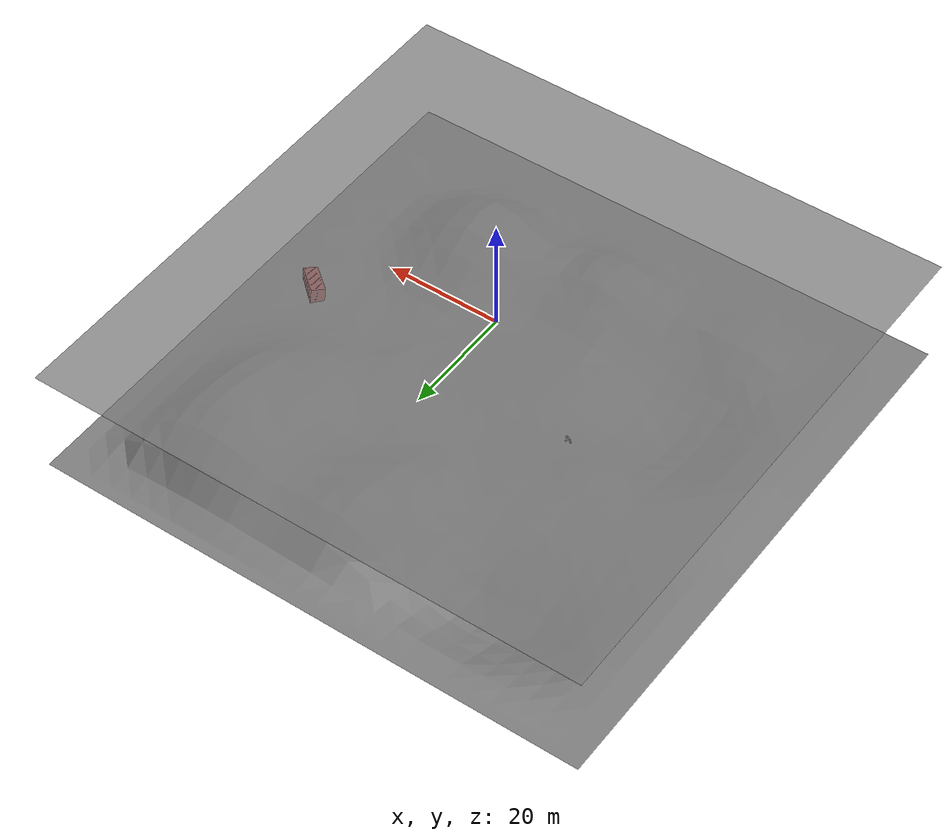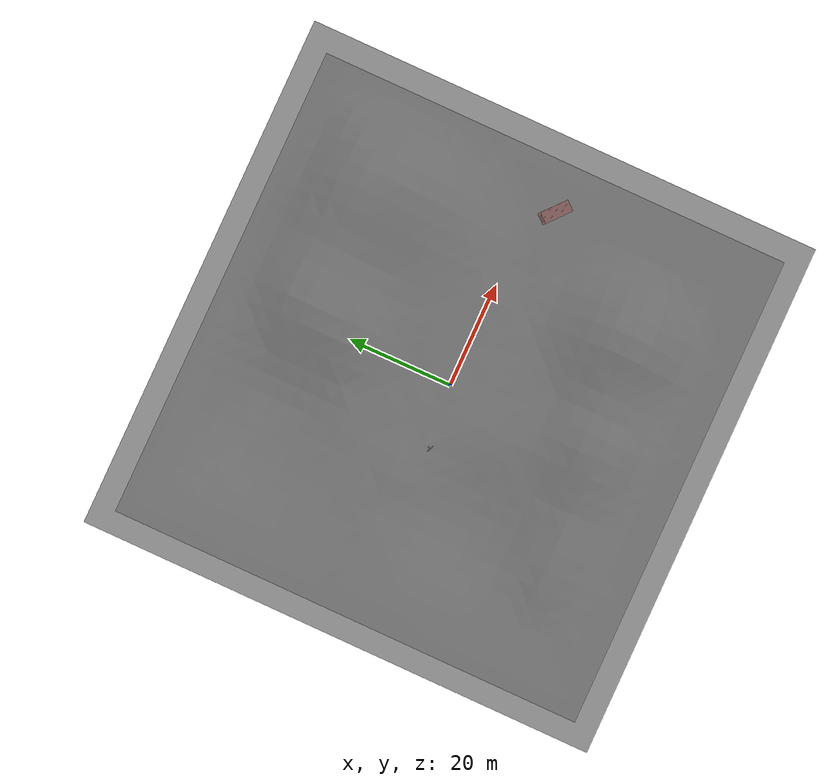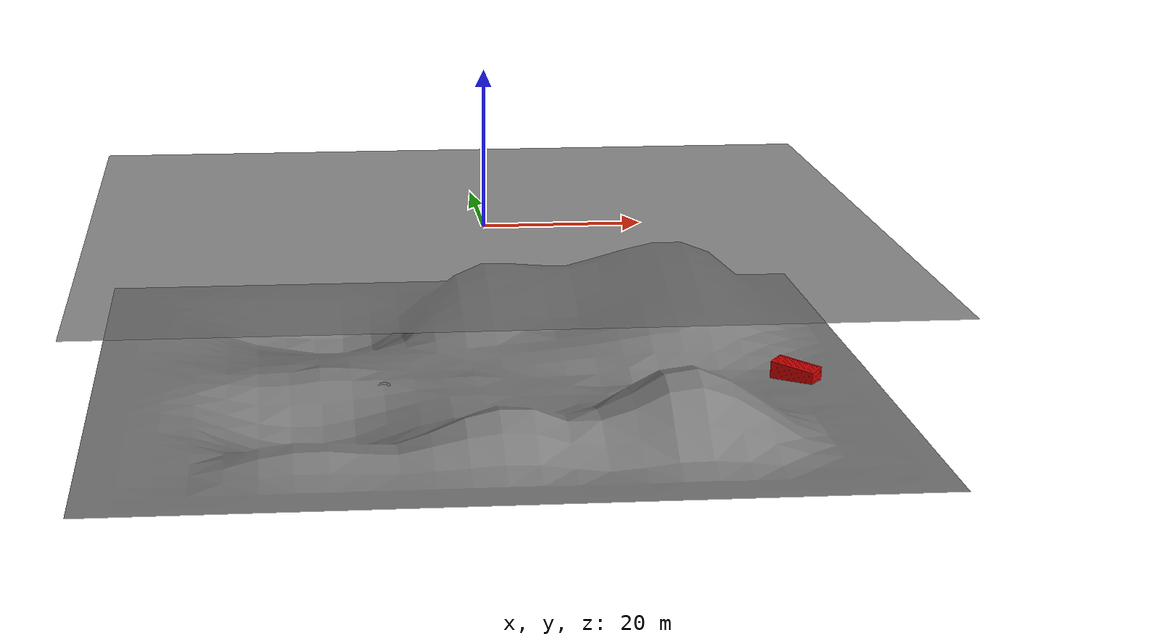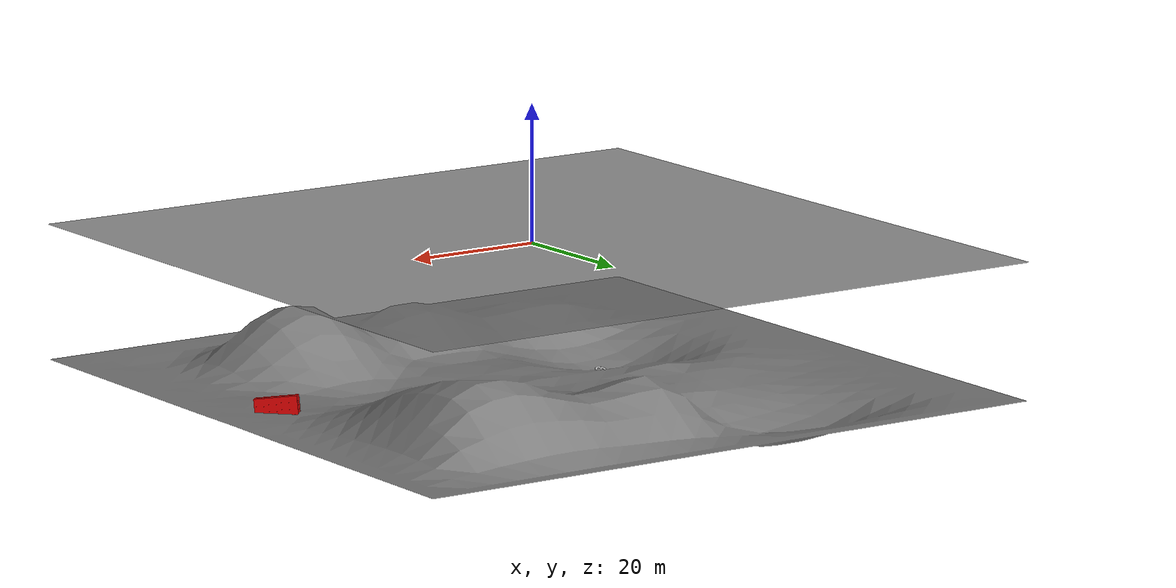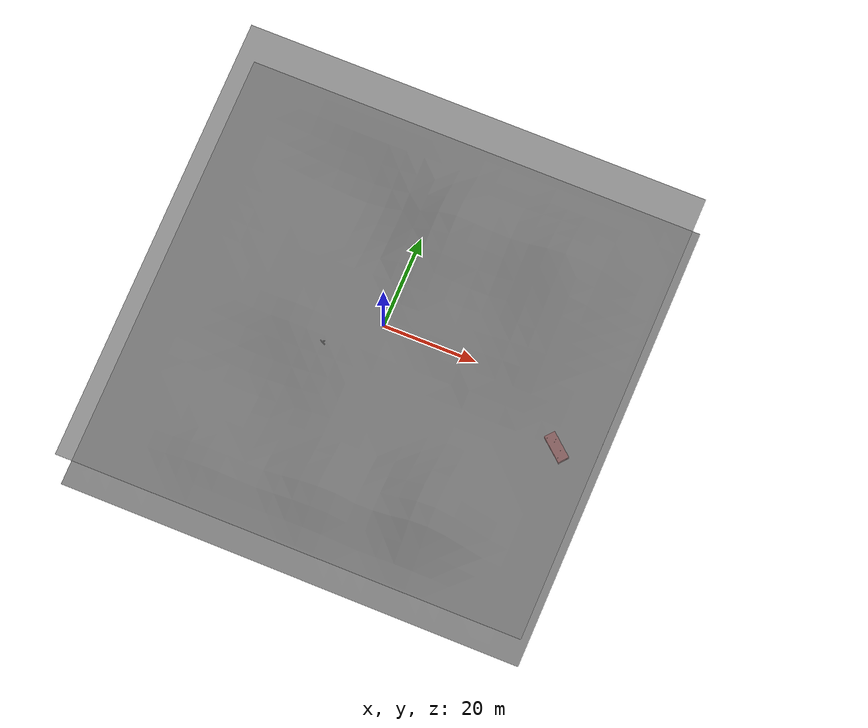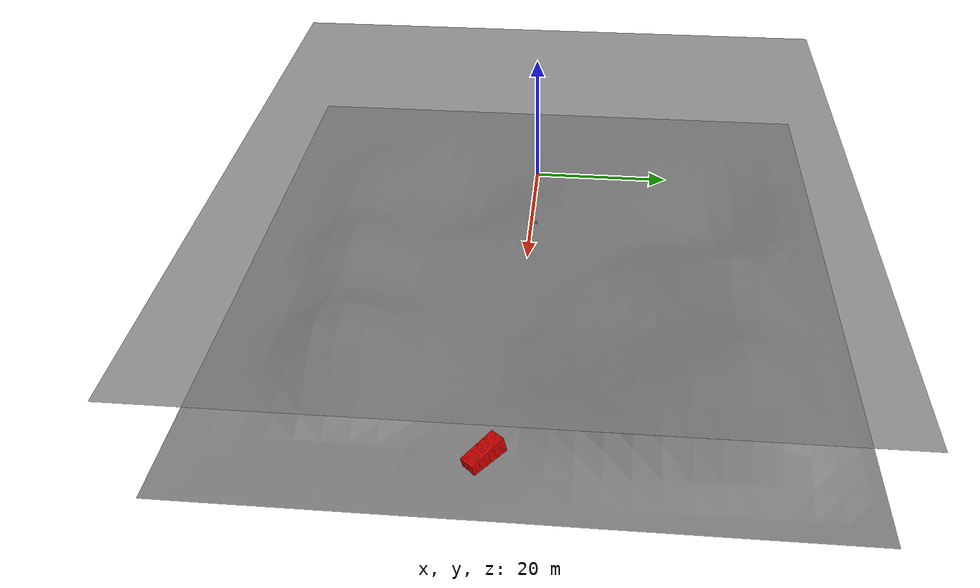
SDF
<sdf version="1.7">
 <world name="bluerov_pipelines">
  <plugin filename="ignition-gazebo-physics-system" name="ignition::gazebo::systems::Physics"/>
  <plugin filename="ignition-gazebo-user-commands-system" name="ignition::gazebo::systems::UserCommands"/>
  <plugin filename="ignition-gazebo-scene-broadcaster-system" name="ignition::gazebo::systems::SceneBroadcaster"/>
  <plugin filename="libignition-gazebo-imu-system.so" name="ignition::gazebo::systems::Imu"/>
  <plugin filename="ignition-gazebo-buoyancy-system" name="ignition::gazebo::systems::Buoyancy">
   <graded_buoyancy>
    <default_density>1000</default_density>
    <density_change><above_depth>0</above_depth><density>1</density></density_change>
   </graded_buoyancy>
   <enable>bluerov2</enable>
  </plugin>
  <light type="directional" name="sun">
   <pose>0 0 150 0 0 0</pose>
   <diffuse>1 1 1 1</diffuse>
   <specular>.1 .1 .1 1</specular>
   <direction>0.3 0.3 -1</direction>
   <cast_shadows>false</cast_shadows>
  </light>
  <light type="directional" name="sun_diffuse">
   <pose>0 0 -150 0 0 0</pose>
   <diffuse>0.6 0.6 0.6 1</diffuse>
   <specular>0 0 0 1</specular>
   <direction>-0.3 -0.3 -1</direction>
   <cast_shadows>false</cast_shadows>
  </light>
  <scene>
   <ambient>0.01 0.01 0.01 1.0</ambient>
   <sky><clouds><speed>12</speed></clouds></sky>
   <shadows>1</shadows>
  </scene>
  <include><uri>model://min_pipes_environment</uri></include>
  <include><uri>model://min_pipes_objects</uri></include>
 </world>
</sdf>

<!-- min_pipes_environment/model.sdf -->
<sdf version="1.7">
  <model name="min_pipes_environment">
    <static>true</static>
    <link name="seabed">
      <collision name="seabed">
        <pose>0 0 -20 0 0 1.57</pose>
        <geometry>
          <mesh>
            <uri>meshes/seabed.dae</uri>
            <scale>1.0 1.0 1.0</scale>
          </mesh>
        </geometry>
      </collision>

      <visual name="seabed">
        <cast_shadows>true</cast_shadows>
        <pose>0 0 -20 0 0 1.57</pose>
        <geometry>
          <mesh>
            <uri>meshes/seabed.dae</uri>
            <scale>1.0 1.0 1.0</scale>
          </mesh>
        </geometry>
        <material>
          <pbr>
            <metal>
              <albedo_map>textures/soil_sand_0045_01.jpg</albedo_map>
            </metal>
          </pbr>
          <ambient>0.5 0.5 0.5 1.0</ambient>
          <diffuse>0.5 0.5 0.5 1.0</diffuse>
          <specular>0.2 0.2 0.2 1.0</specular>
        </material>
      </visual>
    </link>

    <link name="ocean_link">
      <visual name="surface">
        <pose>0 0 0 0 0 0</pose>
        <cast_shadows>false</cast_shadows>
        <geometry>
          <box>
            <size>100 100 0.01</size>
          </box>
        </geometry>
        <material>
          <pbr>
            <metal>
              <albedo_map>textures/water_water_0076_03_s.jpg</albedo_map>
            </metal>
          </pbr>
          <ambient> 0.5 0.5 0.5 0.8 </ambient>
          <diffuse> 0.5 0.5 0.5 0.8 </diffuse>
        </material>
      </visual>
    </link>

  </model>
</sdf>

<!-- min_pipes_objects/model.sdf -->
<sdf version="1.7">
  <model name="min_pipes_objects">
    <static>true</static>

    <link name="base_link">
      <collision name="container">
        <pose>40 -4.5 -19.4 2.27 1.40 1.57</pose>
        <geometry>
          <mesh>
            <uri>meshes/container.dae</uri>
            <scale>1.0 1.0 1.0</scale>
          </mesh>
        </geometry>
      </collision>

      <visual name="container">
        <cast_shadows>true</cast_shadows>
        <pose>40 -4.5 -19.4 2.27 1.40 1.57</pose>
        <geometry>
          <mesh>
            <uri>meshes/container.dae</uri>
            <scale>1.0 1.0 1.0</scale>
          </mesh>
        </geometry>
      </visual>
    </link>

    <link name="anchor">
      <collision name="anchor">
        <pose>-13 -1.5 -20 2.9 0.53 0.96</pose>
        <geometry>
          <mesh>
            <uri>meshes/anchor.dae</uri>
            <scale>1.0 1.0 1.0</scale>
          </mesh>
        </geometry>
      </collision>

      <visual name="anchor">
        <cast_shadows>true</cast_shadows>
        <pose>-13 -1.5 -20 2.9 0.53 0.96</pose>
        <geometry>
          <mesh>
            <uri>meshes/anchor.dae</uri>
            <scale>1.0 1.0 1.0</scale>
          </mesh>
        </geometry>
      </visual>
    </link>

  </model>
</sdf>
